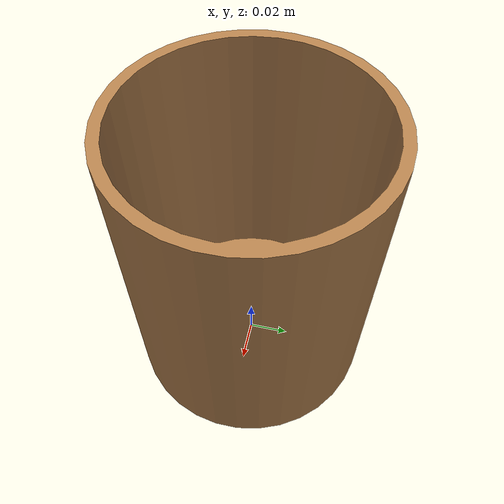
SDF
<?xml version="1.0" ?>
<sdf version='1.6'>
  <model name='big_cup.SLDPRT'>
    <static>0</static>
    <link name='big_cup'>
      <pose frame=''>0 0 0 0 -0 0</pose>
      <inertial>
        <pose frame=''>0 -0 0.056824 0 -0 0</pose>
        <mass>0.1098</mass>
        <inertia>
          <ixx>0.00041227</ixx>
          <ixy>-2.5101e-36</ixy>
          <ixz>-7.6813e-36</ixz>
          <iyy>0.00041227</iyy>
          <iyz>1.37013e-20</iyz>
          <izz>0.00031239</izz>
        </inertia>
      </inertial>

      <collision name='big_cup_collision'>
        <pose frame=''>0 0 0 1.5708 -0 0</pose>

        <geometry>
          <mesh>
            <scale>1 1 1</scale>
            <uri>model://big_cup/meshes/big_cup.STL</uri>
          </mesh>
        </geometry>

          <surface>
            <friction>
              <ode>
                <mu>0.5</mu>
                <mu2>0.5</mu2>
              </ode>
            </friction>
            <contact>
              <ode>
                <kp>1000000.0</kp>
                <kd>1.0</kd>
                <max_vel>1.0</max_vel>
                <min_depth>0.0025</min_depth>
              </ode>
            </contact>
          </surface>

      </collision>

      <visual name='big_cup_visual'>
        <pose frame=''>0 0 0 1.5708 -0 0</pose>

        <geometry>
          <mesh>
            <scale>1 1 1</scale>
            <uri>model://big_cup/meshes/big_cup.STL</uri>
          </mesh>
        </geometry>

	<material>
          <script>
            <uri>file://big_cup/textures/Scratches-bump.jpg</uri>
            <name>Gazebo/Wood</name>
          </script>
        </material>

      </visual>
        <velocity_decay>
          <linear>0.000000</linear>
          <angular>0.000000</angular>
        </velocity_decay>
        <self_collide>0</self_collide>
        <kinematic>0</kinematic>
        <gravity>1</gravity>

    </link>
  </model>
</sdf>
